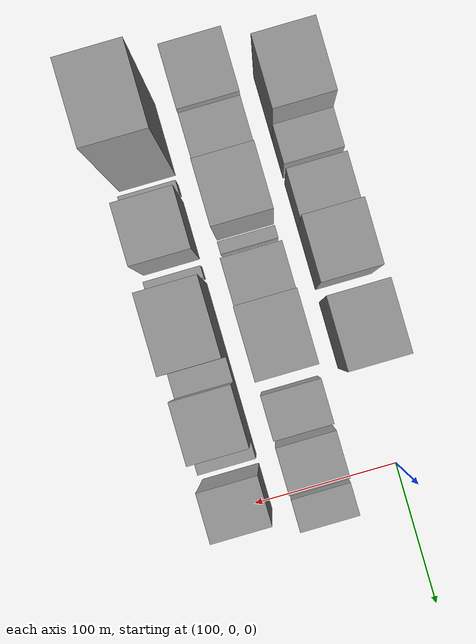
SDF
<sdf version="1.6">
 <world name="default">
  <model name="building_7">
   <static>1</static>
   <pose>100.0000 -257.4847 0 0.000000 0.000000 0.000000</pose>
   <link name="link">
    <pose>0 0 45.00 0 0 0</pose>
    <collision name="collision"><geometry><box><size>40.0000 46.1651 90.0000</size></box></geometry></collision>
    <visual name="visual">
     <cast_shadows>0</cast_shadows>
     <geometry><box><size>40.0000 46.1651 90.0000</size></box></geometry>
     <material>
      <script>
       <uri>model://grey_wall/materials/scripts</uri>
       <uri>model://grey_wall/materials/textures</uri>
       <name>vrc/grey_wall</name>
      </script>
     </material>
    </visual>
   </link>
  </model>
  <model name="building_8">
   <static>1</static>
   <pose>100.0000 -221.3665 0 0.000000 0.000000 0.000000</pose>
   <link name="link">
    <pose>0 0 25.50 0 0 0</pose>
    <collision name="collision"><geometry><box><size>40.0000 26.0713 51.0000</size></box></geometry></collision>
    <visual name="visual">
     <cast_shadows>0</cast_shadows>
     <geometry><box><size>40.0000 26.0713 51.0000</size></box></geometry>
     <material>
      <script>
       <uri>model://grey_wall/materials/scripts</uri>
       <uri>model://grey_wall/materials/textures</uri>
       <name>vrc/grey_wall</name>
      </script>
     </material>
    </visual>
   </link>
  </model>
  <model name="building_9">
   <static>1</static>
   <pose>100.0000 -187.9734 0 0.000000 0.000000 0.000000</pose>
   <link name="link">
    <pose>0 0 28.50 0 0 0</pose>
    <collision name="collision"><geometry><box><size>40.0000 32.7148 57.0000</size></box></geometry></collision>
    <visual name="visual">
     <cast_shadows>0</cast_shadows>
     <geometry><box><size>40.0000 32.7148 57.0000</size></box></geometry>
     <material>
      <script>
       <uri>model://grey_wall/materials/scripts</uri>
       <uri>model://grey_wall/materials/textures</uri>
       <name>vrc/grey_wall</name>
      </script>
     </material>
    </visual>
   </link>
  </model>
  <model name="building_10">
   <static>1</static>
   <pose>100.0000 -150.2736 0 0.000000 0.000000 0.000000</pose>
   <link name="link">
    <pose>0 0 37.50 0 0 0</pose>
    <collision name="collision"><geometry><box><size>40.0000 42.6848 75.0000</size></box></geometry></collision>
    <visual name="visual">
     <cast_shadows>0</cast_shadows>
     <geometry><box><size>40.0000 42.6848 75.0000</size></box></geometry>
     <material>
      <script>
       <uri>model://grey_wall/materials/scripts</uri>
       <uri>model://grey_wall/materials/textures</uri>
       <name>vrc/grey_wall</name>
      </script>
     </material>
    </visual>
   </link>
  </model>
  <model name="building_11">
   <static>1</static>
   <pose>100.0000 -96.4146 0 0.000000 0.000000 0.000000</pose>
   <link name="link">
    <pose>0 0 43.50 0 0 0</pose>
    <collision name="collision"><geometry><box><size>40.0000 47.0333 87.0000</size></box></geometry></collision>
    <visual name="visual">
     <cast_shadows>0</cast_shadows>
     <geometry><box><size>40.0000 47.0333 87.0000</size></box></geometry>
     <material>
      <script>
       <uri>model://grey_wall/materials/scripts</uri>
       <uri>model://grey_wall/materials/textures</uri>
       <name>vrc/grey_wall</name>
      </script>
     </material>
    </visual>
   </link>
  </model>
  <model name="building_37">
   <static>1</static>
   <pose>155.0000 -275.3972 0 0.000000 0.000000 0.000000</pose>
   <link name="link">
    <pose>0 0 36.00 0 0 0</pose>
    <collision name="collision"><geometry><box><size>40.0000 41.3480 72.0000</size></box></geometry></collision>
    <visual name="visual">
     <cast_shadows>0</cast_shadows>
     <geometry><box><size>40.0000 41.3480 72.0000</size></box></geometry>
     <material>
      <script>
       <uri>model://grey_wall/materials/scripts</uri>
       <uri>model://grey_wall/materials/textures</uri>
       <name>vrc/grey_wall</name>
      </script>
     </material>
    </visual>
   </link>
  </model>
  <model name="building_38">
   <static>1</static>
   <pose>155.0000 -238.8787 0 0.000000 0.000000 0.000000</pose>
   <link name="link">
    <pose>0 0 31.50 0 0 0</pose>
    <collision name="collision"><geometry><box><size>40.0000 31.6891 63.0000</size></box></geometry></collision>
    <visual name="visual">
     <cast_shadows>0</cast_shadows>
     <geometry><box><size>40.0000 31.6891 63.0000</size></box></geometry>
     <material>
      <script>
       <uri>model://grey_wall/materials/scripts</uri>
       <uri>model://grey_wall/materials/textures</uri>
       <name>vrc/grey_wall</name>
      </script>
     </material>
    </visual>
   </link>
  </model>
  <model name="building_39">
   <static>1</static>
   <pose>155.0000 -201.5462 0 0.000000 0.000000 0.000000</pose>
   <link name="link">
    <pose>0 0 37.50 0 0 0</pose>
    <collision name="collision"><geometry><box><size>40.0000 42.9759 75.0000</size></box></geometry></collision>
    <visual name="visual">
     <cast_shadows>0</cast_shadows>
     <geometry><box><size>40.0000 42.9759 75.0000</size></box></geometry>
     <material>
      <script>
       <uri>model://grey_wall/materials/scripts</uri>
       <uri>model://grey_wall/materials/textures</uri>
       <name>vrc/grey_wall</name>
      </script>
     </material>
    </visual>
   </link>
  </model>
  <model name="building_40">
   <static>1</static>
   <pose>155.0000 -172.7081 0 0.000000 0.000000 0.000000</pose>
   <link name="link">
    <pose>0 0 9.00 0 0 0</pose>
    <collision name="collision"><geometry><box><size>40.0000 8.7003 18.0000</size></box></geometry></collision>
    <visual name="visual">
     <cast_shadows>0</cast_shadows>
     <geometry><box><size>40.0000 8.7003 18.0000</size></box></geometry>
     <material>
      <script>
       <uri>model://grey_wall/materials/scripts</uri>
       <uri>model://grey_wall/materials/textures</uri>
       <name>vrc/grey_wall</name>
      </script>
     </material>
    </visual>
   </link>
  </model>
  <model name="building_41">
   <static>1</static>
   <pose>155.0000 -145.5700 0 0.000000 0.000000 0.000000</pose>
   <link name="link">
    <pose>0 0 31.50 0 0 0</pose>
    <collision name="collision"><geometry><box><size>40.0000 31.5759 63.0000</size></box></geometry></collision>
    <visual name="visual">
     <cast_shadows>0</cast_shadows>
     <geometry><box><size>40.0000 31.5759 63.0000</size></box></geometry>
     <material>
      <script>
       <uri>model://grey_wall/materials/scripts</uri>
       <uri>model://grey_wall/materials/textures</uri>
       <name>vrc/grey_wall</name>
      </script>
     </material>
    </visual>
   </link>
  </model>
  <model name="building_42">
   <static>1</static>
   <pose>155.0000 -105.9636 0 0.000000 0.000000 0.000000</pose>
   <link name="link">
    <pose>0 0 40.50 0 0 0</pose>
    <collision name="collision"><geometry><box><size>40.0000 47.6367 81.0000</size></box></geometry></collision>
    <visual name="visual">
     <cast_shadows>0</cast_shadows>
     <geometry><box><size>40.0000 47.6367 81.0000</size></box></geometry>
     <material>
      <script>
       <uri>model://grey_wall/materials/scripts</uri>
       <uri>model://grey_wall/materials/textures</uri>
       <name>vrc/grey_wall</name>
      </script>
     </material>
    </visual>
   </link>
  </model>
  <model name="building_43">
   <static>1</static>
   <pose>155.0000 -57.1693 0 0.000000 0.000000 0.000000</pose>
   <link name="link">
    <pose>0 0 25.50 0 0 0</pose>
    <collision name="collision"><geometry><box><size>40.0000 29.9519 51.0000</size></box></geometry></collision>
    <visual name="visual">
     <cast_shadows>0</cast_shadows>
     <geometry><box><size>40.0000 29.9519 51.0000</size></box></geometry>
     <material>
      <script>
       <uri>model://grey_wall/materials/scripts</uri>
       <uri>model://grey_wall/materials/textures</uri>
       <name>vrc/grey_wall</name>
      </script>
     </material>
    </visual>
   </link>
  </model>
  <model name="building_44">
   <static>1</static>
   <pose>155.0000 -22.5484 0 0.000000 0.000000 0.000000</pose>
   <link name="link">
    <pose>0 0 27.00 0 0 0</pose>
    <collision name="collision"><geometry><box><size>40.0000 31.2899 54.0000</size></box></geometry></collision>
    <visual name="visual">
     <cast_shadows>0</cast_shadows>
     <geometry><box><size>40.0000 31.2899 54.0000</size></box></geometry>
     <material>
      <script>
       <uri>model://grey_wall/materials/scripts</uri>
       <uri>model://grey_wall/materials/textures</uri>
       <name>vrc/grey_wall</name>
      </script>
     </material>
    </visual>
   </link>
  </model>
  <model name="building_45">
   <static>1</static>
   <pose>155.0000 9.1401 0 0.000000 0.000000 0.000000</pose>
   <link name="link">
    <pose>0 0 19.50 0 0 0</pose>
    <collision name="collision"><geometry><box><size>40.0000 22.0871 39.0000</size></box></geometry></collision>
    <visual name="visual">
     <cast_shadows>0</cast_shadows>
     <geometry><box><size>40.0000 22.0871 39.0000</size></box></geometry>
     <material>
      <script>
       <uri>model://grey_wall/materials/scripts</uri>
       <uri>model://grey_wall/materials/textures</uri>
       <name>vrc/grey_wall</name>
      </script>
     </material>
    </visual>
   </link>
  </model>
  <model name="building_67">
   <static>1</static>
   <pose>210.0000 -256.1379 0 0.000000 0.000000 0.000000</pose>
   <link name="link">
    <pose>0 0 70.50 0 0 0</pose>
    <collision name="collision"><geometry><box><size>40.0000 50.7561 141.0000</size></box></geometry></collision>
    <visual name="visual">
     <cast_shadows>0</cast_shadows>
     <geometry><box><size>40.0000 50.7561 141.0000</size></box></geometry>
     <material>
      <script>
       <uri>model://grey_wall/materials/scripts</uri>
       <uri>model://grey_wall/materials/textures</uri>
       <name>vrc/grey_wall</name>
      </script>
     </material>
    </visual>
   </link>
  </model>
  <model name="building_68">
   <static>1</static>
   <pose>210.0000 -219.5408 0 0.000000 0.000000 0.000000</pose>
   <link name="link">
    <pose>0 0 10.50 0 0 0</pose>
    <collision name="collision"><geometry><box><size>40.0000 8.4380 21.0000</size></box></geometry></collision>
    <visual name="visual">
     <cast_shadows>0</cast_shadows>
     <geometry><box><size>40.0000 8.4380 21.0000</size></box></geometry>
     <material>
      <script>
       <uri>model://grey_wall/materials/scripts</uri>
       <uri>model://grey_wall/materials/textures</uri>
       <name>vrc/grey_wall</name>
      </script>
     </material>
    </visual>
   </link>
  </model>
  <model name="building_69">
   <static>1</static>
   <pose>210.0000 -191.2065 0 0.000000 0.000000 0.000000</pose>
   <link name="link">
    <pose>0 0 36.00 0 0 0</pose>
    <collision name="collision"><geometry><box><size>40.0000 40.2306 72.0000</size></box></geometry></collision>
    <visual name="visual">
     <cast_shadows>0</cast_shadows>
     <geometry><box><size>40.0000 40.2306 72.0000</size></box></geometry>
     <material>
      <script>
       <uri>model://grey_wall/materials/scripts</uri>
       <uri>model://grey_wall/materials/textures</uri>
       <name>vrc/grey_wall</name>
      </script>
     </material>
    </visual>
   </link>
  </model>
  <model name="building_70">
   <static>1</static>
   <pose>210.0000 -160.8161 0 0.000000 0.000000 0.000000</pose>
   <link name="link">
    <pose>0 0 9.00 0 0 0</pose>
    <collision name="collision"><geometry><box><size>40.0000 8.5503 18.0000</size></box></geometry></collision>
    <visual name="visual">
     <cast_shadows>0</cast_shadows>
     <geometry><box><size>40.0000 8.5503 18.0000</size></box></geometry>
     <material>
      <script>
       <uri>model://grey_wall/materials/scripts</uri>
       <uri>model://grey_wall/materials/textures</uri>
       <name>vrc/grey_wall</name>
      </script>
     </material>
    </visual>
   </link>
  </model>
  <model name="building_71">
   <static>1</static>
   <pose>210.0000 -127.6550 0 0.000000 0.000000 0.000000</pose>
   <link name="link">
    <pose>0 0 43.50 0 0 0</pose>
    <collision name="collision"><geometry><box><size>40.0000 51.7718 87.0000</size></box></geometry></collision>
    <visual name="visual">
     <cast_shadows>0</cast_shadows>
     <geometry><box><size>40.0000 51.7718 87.0000</size></box></geometry>
     <material>
      <script>
       <uri>model://grey_wall/materials/scripts</uri>
       <uri>model://grey_wall/materials/textures</uri>
       <name>vrc/grey_wall</name>
      </script>
     </material>
    </visual>
   </link>
  </model>
  <model name="building_72">
   <static>1</static>
   <pose>210.0000 -93.3276 0 0.000000 0.000000 0.000000</pose>
   <link name="link">
    <pose>0 0 15.00 0 0 0</pose>
    <collision name="collision"><geometry><box><size>40.0000 16.8830 30.0000</size></box></geometry></collision>
    <visual name="visual">
     <cast_shadows>0</cast_shadows>
     <geometry><box><size>40.0000 16.8830 30.0000</size></box></geometry>
     <material>
      <script>
       <uri>model://grey_wall/materials/scripts</uri>
       <uri>model://grey_wall/materials/textures</uri>
       <name>vrc/grey_wall</name>
      </script>
     </material>
    </visual>
   </link>
  </model>
  <model name="building_73">
   <static>1</static>
   <pose>210.0000 -64.4127 0 0.000000 0.000000 0.000000</pose>
   <link name="link">
    <pose>0 0 34.50 0 0 0</pose>
    <collision name="collision"><geometry><box><size>40.0000 40.9469 69.0000</size></box></geometry></collision>
    <visual name="visual">
     <cast_shadows>0</cast_shadows>
     <geometry><box><size>40.0000 40.9469 69.0000</size></box></geometry>
     <material>
      <script>
       <uri>model://grey_wall/materials/scripts</uri>
       <uri>model://grey_wall/materials/textures</uri>
       <name>vrc/grey_wall</name>
      </script>
     </material>
    </visual>
   </link>
  </model>
  <model name="building_74">
   <static>1</static>
   <pose>210.0000 -37.9666 0 0.000000 0.000000 0.000000</pose>
   <link name="link">
    <pose>0 0 12.00 0 0 0</pose>
    <collision name="collision"><geometry><box><size>40.0000 11.9454 24.0000</size></box></geometry></collision>
    <visual name="visual">
     <cast_shadows>0</cast_shadows>
     <geometry><box><size>40.0000 11.9454 24.0000</size></box></geometry>
     <material>
      <script>
       <uri>model://grey_wall/materials/scripts</uri>
       <uri>model://grey_wall/materials/textures</uri>
       <name>vrc/grey_wall</name>
      </script>
     </material>
    </visual>
   </link>
  </model>
  <model name="building_75">
   <static>1</static>
   <pose>210.0000 -9.5237 0 0.000000 0.000000 0.000000</pose>
   <link name="link">
    <pose>0 0 31.50 0 0 0</pose>
    <collision name="collision"><geometry><box><size>40.0000 32.9403 63.0000</size></box></geometry></collision>
    <visual name="visual">
     <cast_shadows>0</cast_shadows>
     <geometry><box><size>40.0000 32.9403 63.0000</size></box></geometry>
     <material>
      <script>
       <uri>model://grey_wall/materials/scripts</uri>
       <uri>model://grey_wall/materials/textures</uri>
       <name>vrc/grey_wall</name>
      </script>
     </material>
    </visual>
   </link>
  </model>
 </world>
</sdf>
